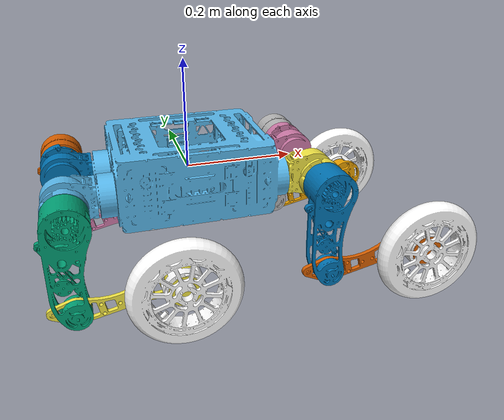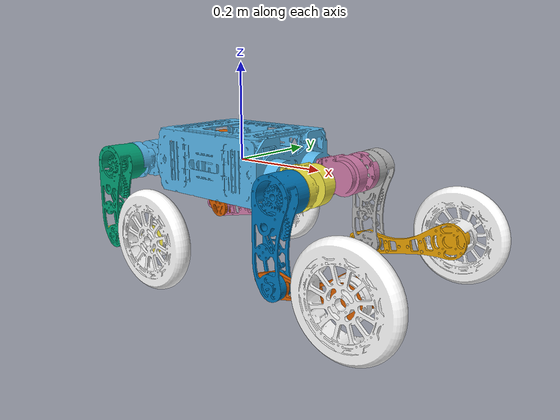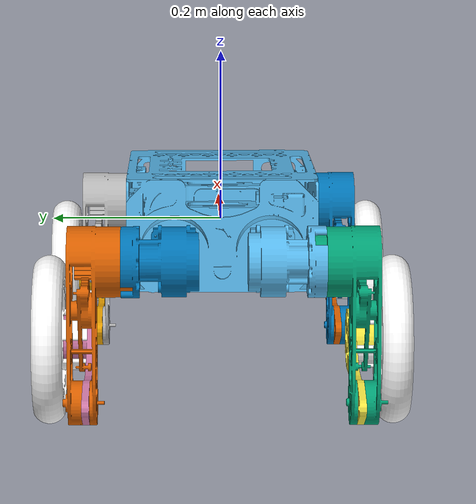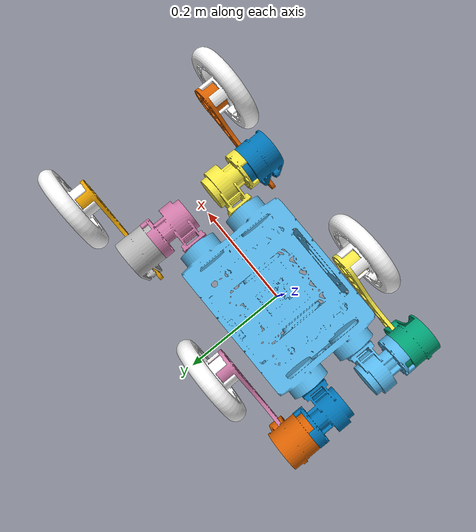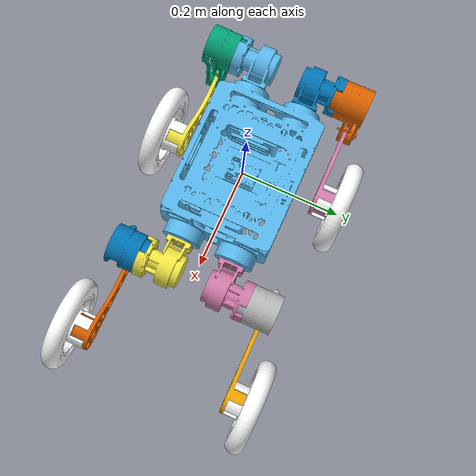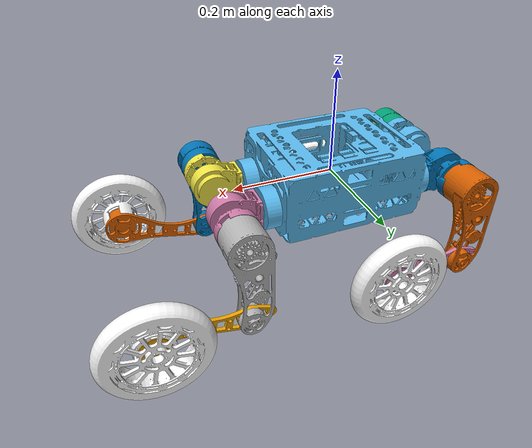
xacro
<?xml version="1.0"?>

<robot name="bw" xmlns:xacro="http://www.ros.org/wiki/xacro">

  <xacro:arg name="DEBUG" default="false"/>

  <xacro:include filename="$(find bw_description)/xacro/const.xacro"/>
  <xacro:include filename="$(find bw_description)/xacro/materials.xacro"/>
  <xacro:include filename="$(find bw_description)/xacro/leg.xacro"/>
  <xacro:include filename="$(find bw_description)/xacro/ros2_control.xacro"/>

  <!-- Rotor related joint and link is only for demonstrate location. -->
  <!-- Actually, the rotor will rotate and the joint is not fixed. Reduction ratio should be considered. -->

  <!-- Debug mode will hung up the robot, use "true" or "false" to switch it. -->
  <xacro:if value="$(arg DEBUG)">
    <link name="world"/>
    <joint name="base_static_joint" type="fixed">
      <origin rpy="0 0 0" xyz="0 0 0"/>
      <parent link="world"/>
      <child link="base"/>
    </joint>
  </xacro:if>

  <link name="base">
    <visual>
      <origin rpy="0 0 0" xyz="0 0 0"/>
      <geometry>
        <box size="0.001 0.001 0.001"/>
      </geometry>
    </visual>
  </link>

  <joint name="floating_base" type="fixed">
    <origin rpy="0 0 0" xyz="0 0 0"/>
    <parent link="base"/>
    <child link="trunk"/>
  </joint>

  <link name="trunk">
    <visual>
      <origin rpy="0 0 0" xyz="0 0 0"/>
      <geometry>
        <mesh filename="file://$(find bw_description)/meshes/base.stl" scale="1 1 1"/>
      </geometry>
    </visual>
    <collision>
      <origin rpy="0 0 0" xyz="0 0 0"/>
      <geometry>
        <box size="${trunk_length} ${trunk_width} ${trunk_height}"/>
      </geometry>
    </collision>
    <inertial>
      <origin rpy="0 0 0" xyz="${trunk_com_x} ${trunk_com_y} ${trunk_com_z}"/>
      <mass value="${trunk_mass}"/>
      <inertia
          ixx="${trunk_ixx}" ixy="${trunk_ixy}" ixz="${trunk_ixz}"
          iyy="${trunk_iyy}" iyz="${trunk_iyz}"
          izz="${trunk_izz}"/>
    </inertial>
  </link>

  <joint name="imu_joint" type="fixed">
    <parent link="trunk"/>
    <child link="imu_link"/>
    <origin rpy="0 0 0" xyz="-0.01 0 0.01232"/>
  </joint>

  <link name="imu_link">
    <inertial>
      <mass value="0.001"/>
      <origin rpy="0 0 0" xyz="0 0 0"/>
      <inertia ixx="0.0001" ixy="0" ixz="0" iyy="0.0001" iyz="0" izz="0.0001"/>
    </inertial>
    <visual>
      <origin rpy="0 0 0" xyz="0 0 0"/>
      <geometry>
        <box size="0.001 0.001 0.001"/>
      </geometry>
    </visual>
    <collision>
      <origin rpy="0 0 0" xyz="0 0 0"/>
      <geometry>
        <box size=".001 .001 .001"/>
      </geometry>
    </collision>
  </link>

  <!-- 先调用所有腿部核心关节（hip/thigh/calf） -->
  <xacro:leg_core name="FR" mirror="-1" mirror_dae="False" front_hind="1" front_hind_dae="True"/>
  <xacro:leg_core name="FL" mirror="1" mirror_dae="True" front_hind="1" front_hind_dae="True"/>
  <xacro:leg_core name="RR" mirror="-1" mirror_dae="False" front_hind="-1" front_hind_dae="False"/>
  <xacro:leg_core name="RL" mirror="1" mirror_dae="True" front_hind="-1" front_hind_dae="False"/>

  <!-- 再调用所有足部关节（foot） -->
  <xacro:leg_foot name="FR" mirror="-1" mirror_dae="False" front_hind="1" front_hind_dae="True"/>
  <xacro:leg_foot name="FL" mirror="1" mirror_dae="True" front_hind="1" front_hind_dae="True"/>
  <xacro:leg_foot name="RR" mirror="-1" mirror_dae="False" front_hind="-1" front_hind_dae="False"/>
  <xacro:leg_foot name="RL" mirror="1" mirror_dae="True" front_hind="-1" front_hind_dae="False"/>

</robot>

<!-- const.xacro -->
<robot xmlns:xacro="http://www.ros.org/wiki/xacro">

	<!-- Constants for robot dimensions -->
	<xacro:property name="PI" value="3.1415926535897931"/> <!-- 定义圆周率常量，用于角度计算 -->
	<xacro:property name="stick_mass" value="0.00001"/> <!-- 定义"stick"（可能是辅助结构）的质量，值极小可能用于简化计算 -->

	<!-- simplified collision value -->
	<!-- 简化的碰撞检测相关尺寸参数 -->
	<xacro:property name="trunk_width" value="0.225"/> <!-- 躯干宽度：0.0935米 -->
	<xacro:property name="trunk_length" value="0.3262"/> <!-- 躯干长度：0.3762米 -->
	<xacro:property name="trunk_height" value="0.125"/> <!-- 躯干高度：0.114米 -->
	<xacro:property name="hip_radius" value="0.0395"/> <!-- 髋关节碰撞体半径：0.046米 -->
	<xacro:property name="hip_length" value="0.13"/> <!-- 髋关节碰撞体长度：0.04米 -->
	<xacro:property name="thigh_shoulder_radius" value="0.041"/> <!-- 大腿肩部碰撞体半径：0.041米 -->
	<xacro:property name="thigh_shoulder_length" value="0.032"/> <!-- 大腿肩部碰撞体长度：0.032米 -->
	<xacro:property name="thigh_width" value="0.032"/> <!-- 大腿宽度：0.0245米 -->
	<xacro:property name="thigh_height" value="0.036"/> <!-- 大腿高度：0.034米 -->
	<xacro:property name="calf_height" value="0.026"/> <!-- 小腿高度：0.016米 -->
	<xacro:property name="calf_width" value="0.018"/> <!-- 小腿宽度：0.016米 -->
	<xacro:property name="foot_height" value="0.035"/> <!-- 轮子宽度：0.016米 -->
	<xacro:property name="foot_radius" value="0.099"/> <!-- 轮子半径：0.016米 -->
	<xacro:property name="stick_radius" value="0.01"/> <!-- 辅助结构半径：0.01米 -->
	<xacro:property name="stick_length" value="0.2"/> <!-- 辅助结构长度：0.2米 -->

	<!-- kinematic value -->
	<!-- 运动学相关参数（用于计算腿部运动范围和位置） -->
	<xacro:property name="thigh_length" value="0.16"/> <!-- 大腿长度：0.213米 -->
	<xacro:property name="calf_length" value="0.175"/> <!-- 小腿长度：0.213米 -->

	<!-- offset of link locations (left front) -->
	<!-- 连杆位置偏移量（以左前腿为基准） -->
	<xacro:property name="hip_offset_x" value="0.2265"/> <!-- 髋关节在X轴的位置偏移：0.1934米 -->
	<xacro:property name="hip_offset_y" value="0.055"/> <!-- 髋关节在Y轴的位置偏移：0.0465米 -->
	<xacro:property name="hip_offset_z" value="-0.015"/> <!-- 髋关节在Z轴的位置偏移：0米（无偏移） -->

	<xacro:property name="thigh_offset_x" value="0"/> <!-- 大腿在X轴的位置偏移：0米 -->
	<xacro:property name="thigh_collision_offset_y" value="0.044"/> <!-- 大腿在Y轴的位置偏移：0.0955米 -->
	<xacro:property name="thigh_offset_y" value="0.1025"/> <!-- 大腿在Y轴的位置偏移：0.0955米 -->
	<xacro:property name="thigh_offset_z" value="0.0"/> <!-- 大腿在Z轴的位置偏移：0米 -->

	<xacro:property name="calf_offset_x" value="0.0"/> <!-- 小腿在X轴的位置偏移：0米 -->
	<xacro:property name="calf_offset_y" value="-0.004"/> <!-- 小腿在Y轴的位置偏移：0米 -->
	<xacro:property name="calf_offset_z" value="-0.16"/> <!-- 小腿在Z轴的位置偏移：-0.213米（向下方向） -->

    <xacro:property name="foot_offset_x" value="0.0"/> <!-- 小腿在X轴的位置偏移：0米 -->
	<xacro:property name="foot_offset_y" value="0.061"/> <!-- 小腿在Y轴的位置偏移：0米 -->
	<xacro:property name="foot_collision_offset_y" value="-0.010000000000000002"/> <!-- 小腿在Y轴的位置偏移：0米 -->
	<xacro:property name="foot_offset_z" value="-0.18"/> <!-- 小腿在Z轴的位置偏移：-0.213米（向下方向） -->

	<!-- joint limits -->
	<!-- 关节运动限制参数 -->
	<xacro:property name="damping" value="0.1"/> <!-- 关节阻尼系数：0.1（影响关节运动的平滑度） -->
	<xacro:property name="friction" value="0.2"/> <!-- 关节摩擦系数：0.2（模拟关节摩擦阻力） -->
	<xacro:property name="hip_position_max" value="1.0472"/> <!-- 髋关节最大位置（角度）：约60度（1.0472弧度） -->
	<xacro:property name="hip_position_min" value="-1.0472"/> <!-- 髋关节最小位置（角度）：约-60度（-1.0472弧度） -->
	<xacro:property name="hip_velocity_max" value="20.1"/> <!-- 髋关节最大速度：30.1弧度/秒 -->
	<xacro:property name="hip_torque_max" value="17.0"/> <!-- 髋关节最大扭矩 -->
	<xacro:property name="thigh_position_max_qian" value="3.4907"/> <!-- 前大腿关节最大位置：约200度（3.4907弧度） -->
	<xacro:property name="thigh_position_min_qian" value="-1.5708"/> <!-- 前大腿关节最小位置：约-90度（-1.5708弧度） -->
	<xacro:property name="thigh_position_max_hou" value="4.5379"/>
	<xacro:property name="thigh_position_min_hou" value="-0.5236"/>
	<xacro:property name="thigh_velocity_max" value="20.1"/>  <!-- 大腿关节最大速度：30.1弧度/秒 -->
	<xacro:property name="thigh_torque_max" value="17.0"/>  <!-- 大腿关节最大扭矩 -->
	<xacro:property name="calf_position_max" value="-0.88"/> <!-- 小腿关节最大位置：约-48度（-0.83776弧度） -->
	<xacro:property name="calf_position_min" value="-2.68"/> <!-- 小腿关节最小位置：约-156度（-2.7227弧度） -->
	<xacro:property name="calf_velocity_max" value="12.07"/> <!-- 小腿关节最大速度-->
	<xacro:property name="calf_torque_max" value="34.0"/> <!-- 小腿关节最大扭矩：34牛·米 -->
	<xacro:property name="foot_velocity_max" value="18.1"/> <!-- 足端轮毂电机最大速度：30.1弧度/秒 -->
	<xacro:property name="foot_torque_max" value="12.0"/> <!-- 足端轮毂电机最大扭矩 -->

	<!-- dynamics inertial value -->
	<!-- 动力学惯性参数（影响机器人运动仿真的物理特性） -->
	<!-- trunk -->
	<!-- 躯干参数 -->
	<!-- 躯干参数 -->
	<xacro:property name="trunk_mass" value="4.7"/> <!-- 躯干质量：4.9千克（原6.921千克） -->
	<xacro:property name="trunk_com_x" value="0.00027676"/> <!-- 躯干质心（COM）在X轴的位置：0.021112米 -->
	<xacro:property name="trunk_com_y" value="-0.0088849"/> <!-- 躯干质心在Y轴的位置：0米（中心对称） -->
	<xacro:property name="trunk_com_z" value="-0.013996"/> <!-- 躯干质心在Z轴的位置：-0.005366米（略向下） -->
	<xacro:property name="trunk_ixx" value="0.02140817"/> <!-- 躯干绕X轴的转动惯量：0.01733 kg·m²（原0.02448） -->
	<xacro:property name="trunk_ixy" value="0.00001236"/> <!-- 躯干绕X-Y轴的惯性积：0.0000861 kg·m²（原0.00012166） -->
	<xacro:property name="trunk_ixz" value="0.00000148"/> <!-- 躯干绕X-Z轴的惯性积：0.0010513 kg·m²（原0.0014849） -->
	<xacro:property name="trunk_iyy" value="0.06703007"/> <!-- 躯干绕Y轴的转动惯量：0.06944 kg·m²（原0.098077） -->
	<xacro:property name="trunk_iyz" value="0.00005692"/> <!-- 躯干绕Y-Z轴的惯性积：-2.209E-05 kg·m²（原-3.12E-05） -->
	<xacro:property name="trunk_izz" value="0.07949588"/> <!-- 躯干绕Z轴的转动惯量：0.07576 kg·m²（原0.107） -->

	<!-- hip (left front) -->
	<!-- 髋关节参数（以左前腿为基准） -->
	<xacro:property name="hip_mass" value="0.5966"/> <!-- 髋关节质量：0.5千克 -->
	<xacro:property name="hip_com_x" value="-0.0041211"/> <!-- 髋关节质心在X轴的位置：-0.0054米 -->
	<xacro:property name="hip_com_y" value="0.0051556"/> <!-- 髋关节质心在Y轴的位置：0.00194米 -->
	<xacro:property name="hip_com_z" value="0.00012878"/> <!-- 髋关节质心在Z轴的位置：-0.000105米 -->
	<xacro:property name="hip_ixx" value="0.00047082"/> <!-- 髋关节绕X轴的转动惯量：0.000354 kg·m² -->
	<xacro:property name="hip_ixy" value="-0.00001656"/> <!-- 髋关节绕X-Y轴的惯性积：-2.22E-06 kg·m² -->
	<xacro:property name="hip_ixz" value="-0.00000158"/> <!-- 髋关节绕X-Z轴的惯性积：8.19E-07 kg·m² -->
	<xacro:property name="hip_iyy" value="0.00055549"/> <!-- 髋关节绕Y轴的转动惯量：0.000652 kg·m² -->
	<xacro:property name="hip_iyz" value="0.00000172"/> <!-- 髋关节绕Y-Z轴的惯性积：-1.05E-06 kg·m² -->
	<xacro:property name="hip_izz" value="0.00058369"/> <!-- 髋关节绕Z轴的转动惯量：0.000440 kg·m² -->

	<!-- thigh -->
	<!-- 大腿参数 -->
	<xacro:property name="thigh_mass" value="0.789"/> <!-- 大腿质量：0.8千克 -->
	<xacro:property name="thigh_com_x" value="-0.0019016"/> <!-- 大腿质心在X轴的位置：-0.00374米 -->
	<xacro:property name="thigh_com_y" value="-0.018616"/> <!-- 大腿质心在Y轴的位置：-0.0223米 -->
	<xacro:property name="thigh_com_z" value="-0.030116"/> <!-- 大腿质心在Z轴的位置：-0.0327米 -->
	<xacro:property name="thigh_ixx" value="0.00402201"/> <!-- 大腿绕X轴的转动惯量：0.00410 kg·m² -->
	<xacro:property name="thigh_ixy" value="2.047E-05"/> <!-- 大腿绕X-Y轴的惯性积：6.12E-05 kg·m² -->
	<xacro:property name="thigh_ixz" value="-1.747E-05"/> <!-- 大腿绕X-Z轴的惯性积：-0.000203 kg·m² -->
	<xacro:property name="thigh_iyy" value="0.00396574"/> <!-- 大腿绕Y轴的转动惯量：0.00407 kg·m² -->
	<xacro:property name="thigh_iyz" value="0.0006155"/> <!-- 大腿绕Y-Z轴的惯性积：0.000567 kg·m² -->
	<xacro:property name="thigh_izz" value="0.00054933"/> <!-- 大腿绕Z轴的转动惯量：0.000722 kg·m² -->

	<!-- calf -->
	<!-- 小腿参数 -->
	<xacro:property name="calf_mass" value="0.377"/> <!-- 小腿质量：0.154千克 -->
	<xacro:property name="calf_com_x" value="-0.000765487060335857"/> <!-- 小腿质心在X轴的位置：0.00548米 -->
	<xacro:property name="calf_com_y" value="0.0183577890363815"/> <!-- 小腿质心在Y轴的位置：-0.000975米 -->
	<xacro:property name="calf_com_z" value="-0.154926754684192"/> <!-- 小腿质心在Z轴的位置：-0.0921米（长度缩放后） -->
	<xacro:property name="calf_ixx" value="0.00098633"/> <!-- 小腿绕X轴的转动惯量：0.0010395 kg·m² (原0.000693×1.5) -->
	<xacro:property name="calf_ixy" value="-0.00000402"/> <!-- 小腿绕X-Y轴的惯性积：3.27E-07 kg·m² (原2.18E-07×1.5) -->
	<xacro:property name="calf_ixz" value="0.00001053"/> <!-- 小腿绕X-Z轴的惯性积：1.65E-05 kg·m² (原1.10E-05×1.5) -->
	<xacro:property name="calf_iyy" value="0.00097543"/> <!-- 小腿绕Y轴的转动惯量：0.001059 kg·m² (原0.000706×1.5) -->
	<xacro:property name="calf_iyz" value="0.00013167"/> <!-- 小腿绕Y-Z轴的惯性积：7.965E-06 kg·m² (原5.31E-06×1.5) -->
	<xacro:property name="calf_izz" value="0.00017669"/> <!-- 小腿绕Z轴的转动惯量：3.165E-05 kg·m² (原2.11E-05×1.5) -->

	<!-- foot -->
	<!-- 足部参数 -->
	<xacro:property name="foot_mass" value="0.6959"/> <!-- 足部质量 -->
	<xacro:property name="foot_com_x" value="3.61016876218034E-05"/> <!-- 小腿质心在X轴的位置： -->
	<xacro:property name="foot_com_y" value="-0.0115832620181727"/> <!-- 小腿质心在Y轴的位置： -->
	<xacro:property name="foot_com_z" value="-8.02701045317655E-05"/> <!-- 小腿质心在Z轴的位置：（长度缩放后） -->
	<xacro:property name="foot_ixx" value="0.00216437"/> <!-- 小腿绕X轴的转动惯量：  -->
	<xacro:property name="foot_ixy" value="0.00000023"/> <!-- 小腿绕X-Y轴的惯性积：  -->
	<xacro:property name="foot_ixz" value="0.00000129"/> <!-- 小腿绕X-Z轴的惯性积： -->
	<xacro:property name="foot_iyy" value="0.00415580"/> <!-- 小腿绕Y轴的转动惯量： -->
	<xacro:property name="foot_iyz" value="-0.00000010"/> <!-- 小腿绕Y-Z轴的惯性积： -->
	<xacro:property name="foot_izz" value="0.00216126"/> <!-- 小腿绕Z轴的转动惯量： -->

</robot>

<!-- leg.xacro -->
<robot xmlns:xacro="http://www.ros.org/wiki/xacro">

  <xacro:include filename="$(find bw_description)/xacro/transmission.xacro"/>

  <!-- 宏1：核心关节（hip/thigh/calf）及相关配置 -->
  <xacro:macro name="leg_core" params="name mirror mirror_dae front_hind front_hind_dae">
    <!-- 髋关节定义 -->
    <joint name="${name}_hip_joint" type="revolute">
      <xacro:if value="${(mirror_dae == False) and (front_hind_dae == True)}">
        <origin rpy="0 0 0" xyz="${hip_offset_x} ${-hip_offset_y} ${hip_offset_z}"/>
      </xacro:if>
      <xacro:if value="${(mirror_dae == True) and (front_hind_dae == True)}">
        <origin rpy="0 0 0" xyz="${hip_offset_x} ${hip_offset_y} ${hip_offset_z}"/>
      </xacro:if>
      <xacro:if value="${(mirror_dae == False) and (front_hind_dae == False)}">
        <origin rpy="0 0 0" xyz="${-hip_offset_x} ${-hip_offset_y} ${hip_offset_z}"/>
      </xacro:if>
      <xacro:if value="${(mirror_dae == True) and (front_hind_dae == False)}">
        <origin rpy="0 0 0" xyz="${-hip_offset_x} ${hip_offset_y} ${hip_offset_z}"/>
      </xacro:if>
      <parent link="trunk"/>
      <child link="${name}_hip"/>
      <axis xyz="1 0 0"/>
      <dynamics damping="${damping}" friction="${friction}"/>
      <xacro:if value="${(mirror_dae == True)}">
        <limit effort="${hip_torque_max}" velocity="${hip_velocity_max}" lower="${hip_position_min}"
               upper="${hip_position_max}"/>
      </xacro:if>
      <xacro:if value="${(mirror_dae == False)}">
        <limit effort="${hip_torque_max}" velocity="${hip_velocity_max}" lower="${-hip_position_max}"
               upper="${-hip_position_min}"/>
      </xacro:if>
    </joint>

    <link name="${name}_hip">
      <visual>
        <xacro:if value="${(mirror_dae == True) and (front_hind_dae == True)}">
          <origin rpy="0 0 0" xyz="0 0 0"/>
        </xacro:if>
        <xacro:if value="${(mirror_dae == False) and (front_hind_dae == True)}">
          <origin rpy="${PI} 0 0" xyz="0 0 0"/>
        </xacro:if>
        <xacro:if value="${(mirror_dae == True) and (front_hind_dae == False)}">
          <origin rpy="0 ${PI} 0" xyz="0 0 0"/>
        </xacro:if>
        <xacro:if value="${(mirror_dae == False) and (front_hind_dae == False)}">
          <origin rpy="${PI} ${PI} 0" xyz="0 0 0"/>
        </xacro:if>
        <geometry>
          <mesh filename="file://$(find bw_description)/meshes/hip.stl" scale="1 1 1"/>
        </geometry>
      </visual>
      <collision>
        <origin rpy="${PI/2.0} 0 0" xyz="0 ${thigh_collision_offset_y*mirror} 0"/>
        <geometry>
          <cylinder length="${hip_length}" radius="${hip_radius}"/>
        </geometry>
      </collision>
      <inertial>
        <origin rpy="0 0 0" xyz="${hip_com_x*front_hind} ${hip_com_y*mirror} ${hip_com_z}"/>
        <mass value="${hip_mass}"/>
        <inertia
            ixx="${hip_ixx}" ixy="${hip_ixy*mirror*front_hind}" ixz="${hip_ixz*front_hind}"
            iyy="${hip_iyy}" iyz="${hip_iyz*mirror}"
            izz="${hip_izz}"/>
      </inertial>
    </link>

    <!-- 大腿关节定义 -->
    <joint name="${name}_thigh_joint" type="revolute">
      <origin rpy="0 0 0" xyz="0 ${thigh_offset_y*mirror} 0"/>
      <parent link="${name}_hip"/>
      <child link="${name}_thigh"/>
      <axis xyz="0 1 0"/>
      <dynamics damping="${damping}" friction="${friction}"/>
      <xacro:if value="${front_hind == 1}">  <!-- 前腿 -->
        <limit effort="${thigh_torque_max}" velocity="${thigh_velocity_max}" lower="${thigh_position_min_qian}" upper="${thigh_position_max_qian}"/>
      </xacro:if>
      <xacro:if value="${front_hind == -1}"> <!-- 后腿 -->
        <limit effort="${thigh_torque_max}" velocity="${thigh_velocity_max}" lower="${thigh_position_min_hou}" upper="${thigh_position_max_hou}"/>
      </xacro:if>
    </joint>

    <link name="${name}_thigh">
      <visual>
        <origin rpy="0 0 0" xyz="0 0 0"/>
        <geometry>
          <xacro:if value="${mirror_dae == True}">
            <mesh filename="file://$(find bw_description)/meshes/thigh.stl" scale="1 1 1"/>
          </xacro:if>
          <xacro:if value="${mirror_dae == False}">
            <mesh filename="file://$(find bw_description)/meshes/thigh_mirror.stl" scale="1 1 1"/>
          </xacro:if>
        </geometry>
      </visual>
      <collision>
        <origin rpy="0 ${PI/2.0} 0" xyz="0 ${-0.005*mirror} ${-thigh_length/2.0}"/>
        <geometry>
          <box size="${thigh_length} ${thigh_width} ${thigh_height}"/>
        </geometry>
      </collision>
      <inertial>
        <origin rpy="0 0 0" xyz="${thigh_com_x*front_hind} ${thigh_com_y*mirror} ${thigh_com_z}"/>
        <mass value="${thigh_mass}"/>
        <inertia
            ixx="${thigh_ixx}" ixy="${thigh_ixy*mirror*front_hind}" ixz="${thigh_ixz*front_hind}"
            iyy="${thigh_iyy}" iyz="${thigh_iyz*mirror}"
            izz="${thigh_izz}"/>
      </inertial>
    </link>

    <!-- 小腿关节定义 -->
    <joint name="${name}_calf_joint" type="revolute">
      <origin rpy="0 0 0" xyz="0 ${calf_offset_y*mirror} ${calf_offset_z}"/>
      <parent link="${name}_thigh"/>
      <child link="${name}_calf"/>
      <axis xyz="0 1 0"/>
      <dynamics damping="${damping}" friction="${friction}"/>
      <limit effort="${calf_torque_max}" velocity="${calf_velocity_max}" lower="${calf_position_min}"
             upper="${calf_position_max}"/>
    </joint>

    <link name="${name}_calf">
      <visual>
        <origin rpy="0 0 0" xyz="0 0 0"/>
        <geometry>
          <xacro:if value="${mirror_dae == True}">
            <mesh filename="file://$(find bw_description)/meshes/calf.stl" scale="1 1 1"/>
          </xacro:if>
          <xacro:if value="${mirror_dae == False}">
            <mesh filename="file://$(find bw_description)/meshes/calf_mirror.stl" scale="1 1 1"/>
          </xacro:if>
        </geometry>
      </visual>
      <collision>
        <origin rpy="0 ${PI/2.0} 0" xyz="0 0 ${-calf_length/2.0+0.025}"/>
        <geometry>
          <box size="${calf_length} ${calf_width} ${calf_height}"/>
        </geometry>
      </collision>
      <inertial>
        <origin rpy="0 0 0" xyz="${calf_com_x*front_hind} ${calf_com_y*mirror} ${calf_com_z}"/>
        <mass value="${calf_mass}"/>
        <inertia
            ixx="${calf_ixx}" ixy="${calf_ixy*mirror*front_hind}" ixz="${calf_ixz*front_hind}"
            iyy="${calf_iyy}" iyz="${calf_iyz*mirror}"
            izz="${calf_izz}"/>
      </inertial>
    </link>

    <!-- 核心关节的传动配置 -->
    <xacro:leg_core_transmission name="${name}"/>
  </xacro:macro>

  <!-- 宏2：足部关节（foot）及相关配置 -->
  <xacro:macro name="leg_foot" params="name mirror mirror_dae front_hind front_hind_dae">
    <!-- 足部关节定义 - 已修改为continuous类型 -->
    <joint name="${name}_foot_joint" type="continuous">
      <origin xyz="0 ${foot_offset_y*mirror} ${foot_offset_z}" rpy="0 0 0"/>
      <parent link="${name}_calf"/>
      <child link="${name}_foot"/>
      <axis xyz="0 1 0"/>
      <dynamics damping="${damping}" friction="${friction}"/>
      <limit effort="${foot_torque_max}" velocity="${foot_velocity_max}"/>
    </joint>

    <link name="${name}_foot">
      <visual>
        <origin rpy="0 0 0" xyz="0 0 0"/>
        <geometry>
          <xacro:if value="${mirror_dae == True}">
            <mesh filename="file://$(find bw_description)/meshes/wheel.stl"/>
          </xacro:if>
          <xacro:if value="${mirror_dae == False}">
            <mesh filename="file://$(find bw_description)/meshes/wheel_mirror.stl"/>
          </xacro:if>
        </geometry>
        <material name="">
          <color rgba="1 1 1 1"/>
        </material>
      </visual>
      <collision>
        <origin rpy="${PI/2.0} 0 0" xyz="0 ${foot_collision_offset_y*mirror} 0"/>
        <geometry>
          <cylinder length="${foot_height}" radius="${foot_radius}"/>
        </geometry>
      </collision>
      <inertial>
        <origin rpy="0 0 0" xyz="${foot_com_x*front_hind} ${foot_com_y*mirror} ${foot_com_z}"/>
        <mass value="${foot_mass}"/>
        <inertia
            ixx="${foot_ixx}" ixy="${foot_ixy*mirror*front_hind}" ixz="${foot_ixz*front_hind}"
            iyy="${foot_iyy}" iyz="${foot_iyz*mirror}"
            izz="${foot_izz}"/>
      </inertial>
    </link>

    <!-- 足部关节的传动配置 -->
    <xacro:leg_foot_transmission name="${name}"/>
  </xacro:macro>

</robot>
